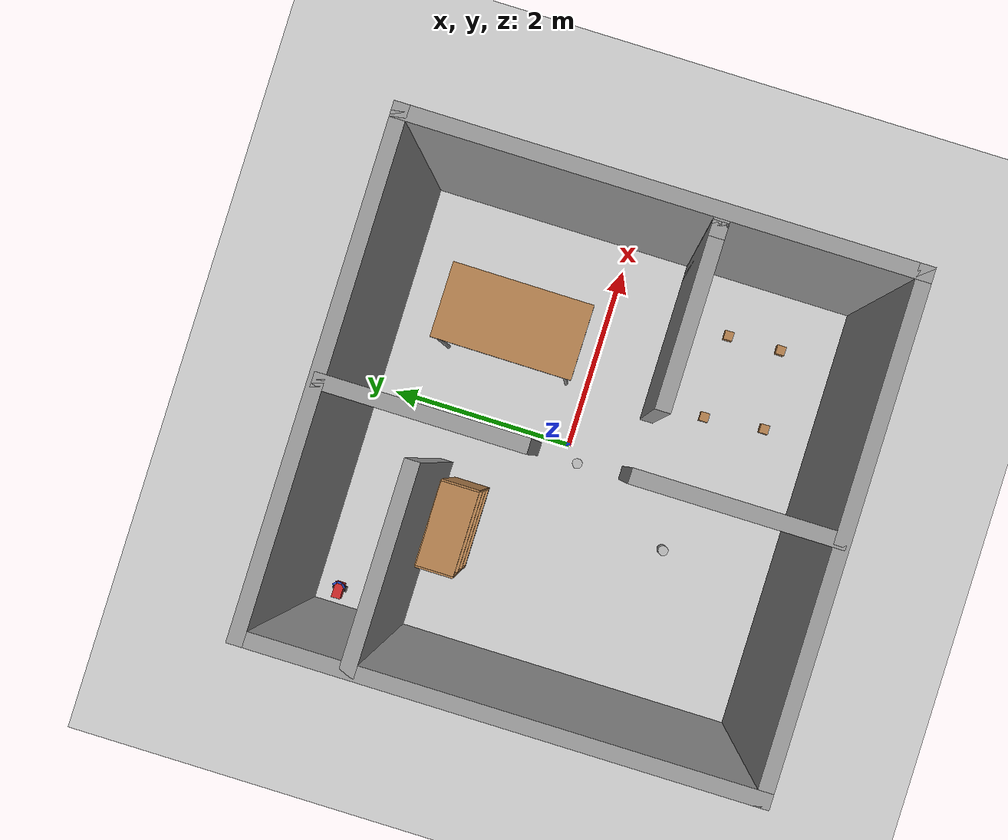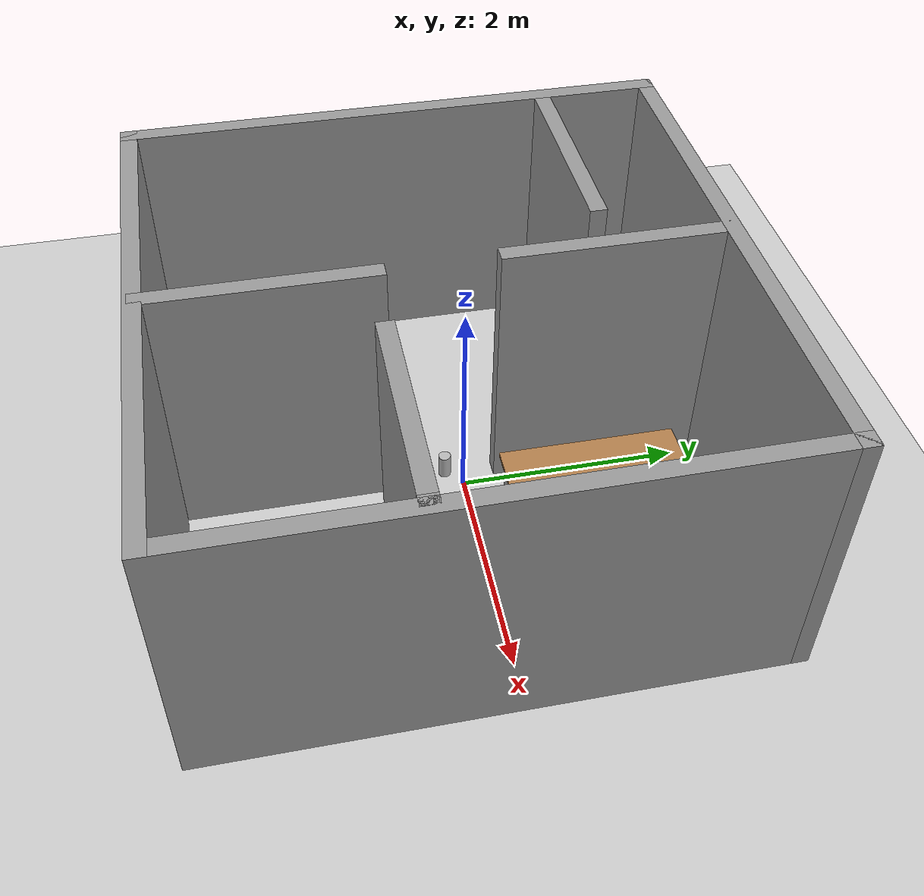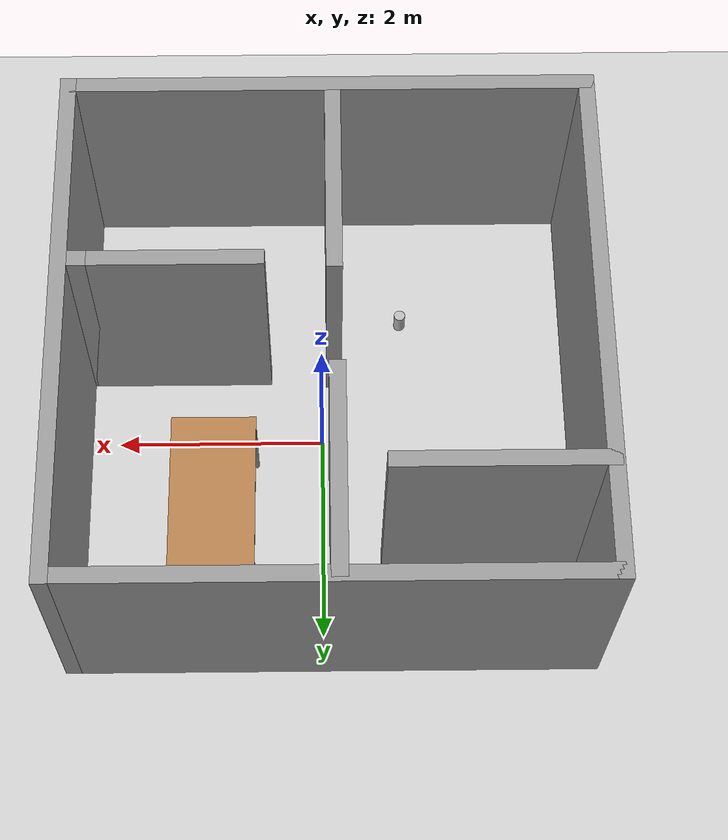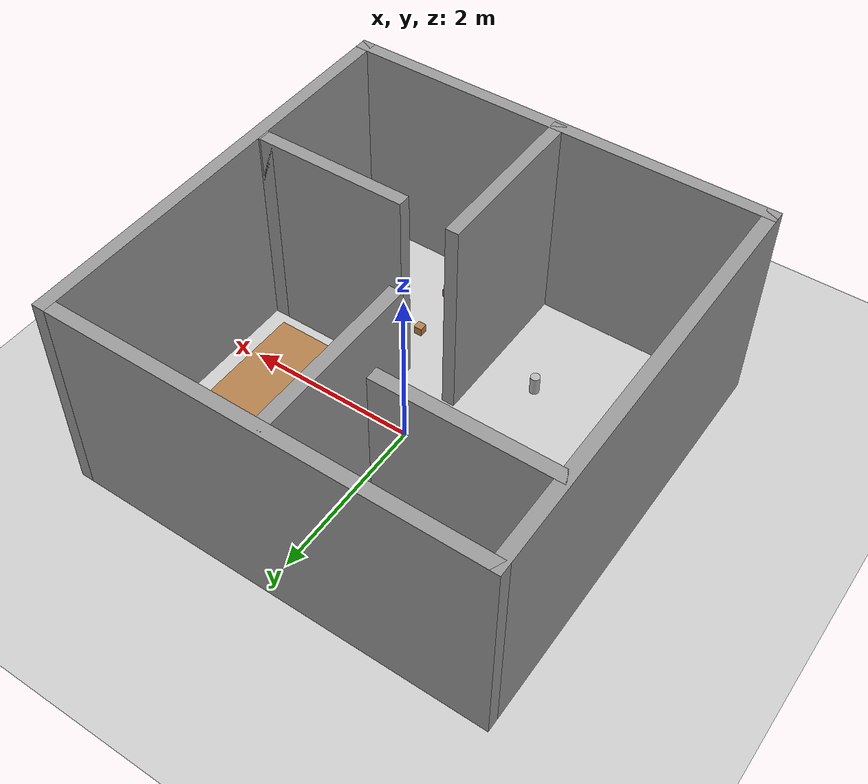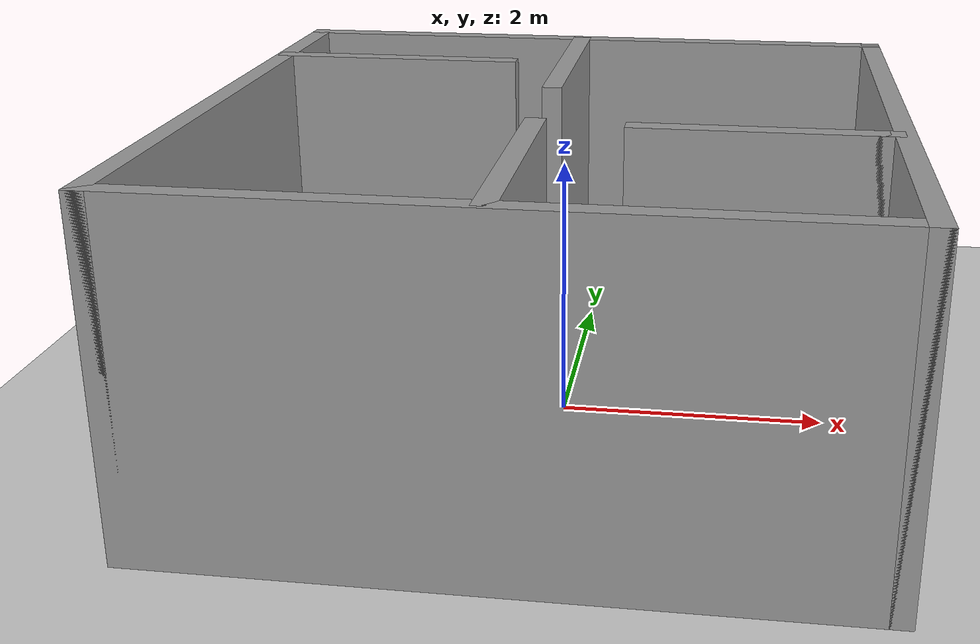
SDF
<sdf version="1.7">
 <world name="default">
  <model name="ground_plane">
   <static>1</static>
   <link name="link">
    <collision name="collision">
     <geometry><plane><normal>0 0 1</normal><size>100 100</size></plane></geometry>
     <surface>
      <contact><collide_bitmask>65535</collide_bitmask></contact>
      <friction><ode><mu>100</mu><mu2>50</mu2></ode></friction>
     </surface>
    </collision>
    <visual name="visual">
     <cast_shadows>0</cast_shadows>
     <geometry><plane><normal>0 0 1</normal><size>100 100</size></plane></geometry>
     <material>
      <script><uri>file://media/materials/scripts/gazebo.material</uri><name>Gazebo/Grey</name></script>
     </material>
    </visual>
   </link>
  </model>
  <light name="sun" type="directional">
   <pose>0 0 10 0 -0 0</pose>
   <diffuse>0.8 0.8 0.8 1</diffuse>
   <specular>0.2 0.2 0.2 1</specular>
   <attenuation>
    <range>1000</range>
    <constant>0.9</constant>
    <linear>0.01</linear>
    <quadratic>0.001</quadratic>
   </attenuation>
   <direction>-0.5 0.1 -0.9</direction>
  </light>
  <gravity>0 0 -9.8</gravity>
  <magnetic_field>6e-06 2.3e-05 -4.2e-05</magnetic_field>
  <atmosphere type="adiabatic"/>
  <physics name="default_physics" default="0" type="ode">
   <max_step_size>0.001</max_step_size>
   <real_time_factor>1</real_time_factor>
   <real_time_update_rate>1000</real_time_update_rate>
  </physics>
  <scene><ambient>0.4 0.4 0.4 1</ambient><background>0.7 0.7 0.7 1</background><shadows>1</shadows></scene>
  <audio><device>default</device></audio>
  <spherical_coordinates>
   <surface_model>EARTH_WGS84</surface_model>
   <latitude_deg>0</latitude_deg>
   <longitude_deg>0</longitude_deg>
   <elevation>0</elevation>
   <heading_deg>0</heading_deg>
  </spherical_coordinates>
  <model name="red_rider">
   <link name="base_link">
    <inertial>
     <pose>-0.007057 0 -0.005881 0 -0 0</pose>
     <mass>1.70003</mass>
     <inertia>
      <ixx>0.130544</ixx>
      <ixy>-7.47233e-25</ixy>
      <ixz>-0.000529575</ixz>
      <iyy>0.21118</iyy>
      <iyz>5.99475e-24</iyz>
      <izz>0.130739</izz>
     </inertia>
    </inertial>
    <collision name="base_link_collision"><geometry><box><size>0.175 0.1 0.1</size></box></geometry></collision>
    <collision name="base_link_fixed_joint_lump__caster_collision_1">
     <pose>-0.06 0 -0.05 0 -0 0</pose>
     <geometry><sphere><radius>0.025</radius></sphere></geometry>
    </collision>
    <collision name="base_link_fixed_joint_lump__sonar_C_solid_collision_2">
     <pose>0.0875 0 0.0625 0 -0 0</pose>
     <geometry><box><size>0.02 0.05 0.025</size></box></geometry>
    </collision>
    <collision name="base_link_fixed_joint_lump__sonar_L_solid_collision_3">
     <pose>0.065 0.0495 0.0625 0 -0 0.785398</pose>
     <geometry><box><size>0.02 0.05 0.025</size></box></geometry>
    </collision>
    <collision name="base_link_fixed_joint_lump__sonar_R_solid_collision_4">
     <pose>0.065 -0.0495 0.0625 0 0 -0.785398</pose>
     <geometry><box><size>0.02 0.05 0.025</size></box></geometry>
    </collision>
    <visual name="base_link_visual">
     <geometry><box><size>0.175 0.1 0.1</size></box></geometry>
     <material>
      <script><name>Gazebo/Red</name><uri>file://media/materials/scripts/gazebo.material</uri></script>
     </material>
    </visual>
    <visual name="base_link_fixed_joint_lump__caster_visual_1">
     <pose>-0.06 0 -0.05 0 -0 0</pose>
     <geometry><sphere><radius>0.025</radius></sphere></geometry>
     <material>
      <script><name>Gazebo/Black</name><uri>file://media/materials/scripts/gazebo.material</uri></script>
     </material>
    </visual>
    <visual name="base_link_fixed_joint_lump__sonar_C_solid_visual_2">
     <pose>0.0875 0 0.0625 0 -0 0</pose>
     <geometry><box><size>0.02 0.05 0.025</size></box></geometry>
     <material>
      <script><name>Gazebo/Blue</name><uri>file://media/materials/scripts/gazebo.material</uri></script>
     </material>
    </visual>
    <visual name="base_link_fixed_joint_lump__sonar_L_solid_visual_3">
     <pose>0.065 0.0495 0.0625 0 -0 0.785398</pose>
     <geometry><box><size>0.02 0.05 0.025</size></box></geometry>
     <material>
      <script><name>Gazebo/Blue</name><uri>file://media/materials/scripts/gazebo.material</uri></script>
     </material>
    </visual>
    <visual name="base_link_fixed_joint_lump__sonar_R_solid_visual_4">
     <pose>0.065 -0.0495 0.0625 0 0 -0.785398</pose>
     <geometry><box><size>0.02 0.05 0.025</size></box></geometry>
     <material>
      <script><name>Gazebo/Blue</name><uri>file://media/materials/scripts/gazebo.material</uri></script>
     </material>
    </visual>
    <sensor name="center_sonar" type="ray">
     <always_on>1</always_on>
     <visualize>1</visualize>
     <update_rate>30</update_rate>
     <ray>
      <scan>
       <horizontal>
        <samples>50</samples>
        <resolution>1</resolution>
        <min_angle>-0.349066</min_angle>
        <max_angle>0.349066</max_angle>
       </horizontal>
       <vertical>
        <samples>50</samples>
        <resolution>1</resolution>
        <min_angle>-0.0872665</min_angle>
        <max_angle>0.0872665</max_angle>
       </vertical>
      </scan>
      <range><min>0.001</min><max>2</max><resolution>0.0005</resolution></range>
     </ray>
     <plugin name="gazebo_sonar_c" filename="libgazebo_ros_range.so">
      <gaussianNoise>0.005</gaussianNoise>
      <alwaysOn>1</alwaysOn>
      <updateRate>30</updateRate>
      <topicName>red_rider/sensors/sonar</topicName>
      <frameName>sonar_C</frameName>
      <radiation>ultrasound</radiation>
      <fov>0.175</fov>
      <robotNamespace>/</robotNamespace>
     </plugin>
     <pose>0.0975 0 0.0625 0 -0 0</pose>
    </sensor>
    <sensor name="left_sonar" type="ray">
     <always_on>1</always_on>
     <visualize>1</visualize>
     <update_rate>30</update_rate>
     <ray>
      <scan>
       <horizontal>
        <samples>50</samples>
        <resolution>1</resolution>
        <min_angle>-0.349066</min_angle>
        <max_angle>0.349066</max_angle>
       </horizontal>
       <vertical>
        <samples>50</samples>
        <resolution>1</resolution>
        <min_angle>-0.0872665</min_angle>
        <max_angle>0.0872665</max_angle>
       </vertical>
      </scan>
      <range><min>0.001</min><max>2</max><resolution>0.0005</resolution></range>
     </ray>
     <plugin name="gazebo_sonar_l" filename="libgazebo_ros_range.so">
      <gaussianNoise>0.005</gaussianNoise>
      <alwaysOn>1</alwaysOn>
      <updateRate>30</updateRate>
      <topicName>red_rider/sensors/sonar</topicName>
      <frameName>sonar_L</frameName>
      <radiation>ultrasound</radiation>
      <fov>0.175</fov>
      <robotNamespace>/</robotNamespace>
     </plugin>
     <pose>0.072071 0.056571 0.0625 0 -0 0.785398</pose>
    </sensor>
    <sensor name="right_sonar" type="ray">
     <always_on>1</always_on>
     <visualize>1</visualize>
     <update_rate>30</update_rate>
     <ray>
      <scan>
       <horizontal>
        <samples>50</samples>
        <resolution>1</resolution>
        <min_angle>-0.349066</min_angle>
        <max_angle>0.349066</max_angle>
       </horizontal>
       <vertical>
        <samples>50</samples>
        <resolution>1</resolution>
        <min_angle>-0.0872665</min_angle>
        <max_angle>0.0872665</max_angle>
       </vertical>
      </scan>
      <range><min>0.001</min><max>2</max><resolution>0.0005</resolution></range>
     </ray>
     <plugin name="gazebo_sonar_r" filename="libgazebo_ros_range.so">
      <gaussianNoise>0.005</gaussianNoise>
      <alwaysOn>1</alwaysOn>
      <updateRate>30</updateRate>
      <topicName>red_rider/sensors/sonar</topicName>
      <frameName>sonar_R</frameName>
      <radiation>ultrasound</radiation>
      <fov>0.175</fov>
      <robotNamespace>/</robotNamespace>
     </plugin>
     <pose>0.072071 -0.056571 0.0625 0 0 -0.785398</pose>
    </sensor>
   </link>
   <link name="left_wheel">
    <pose>0.025 0.0625 -0.0425 0 -0 0</pose>
    <inertial>
     <pose>0 0 0 1.57079 -0 0</pose>
     <mass>0.15</mass>
     <inertia><ixx>0.01</ixx><ixy>0</ixy><ixz>0</ixz><iyy>0.005</iyy><iyz>0</iyz><izz>0.005</izz></inertia>
    </inertial>
    <collision name="left_wheel_collision">
     <pose>0 0 0 1.57079 -0 0</pose>
     <geometry><cylinder><length>0.025</length><radius>0.0325</radius></cylinder></geometry>
    </collision>
    <visual name="left_wheel_visual">
     <pose>0 0 0 1.57079 -0 0</pose>
     <geometry><cylinder><length>0.025</length><radius>0.0325</radius></cylinder></geometry>
     <material>
      <script><name>Gazebo/Black</name><uri>file://media/materials/scripts/gazebo.material</uri></script>
     </material>
    </visual>
   </link>
   <joint name="joint_left_wheel" type="revolute">
    <child>left_wheel</child>
    <parent>base_link</parent>
    <axis>
     <xyz>0 1 0</xyz>
     <limit><lower>-1e+16</lower><upper>1e+16</upper></limit>
     <dynamics><spring_reference>0</spring_reference><spring_stiffness>0</spring_stiffness></dynamics>
     <use_parent_model_frame>1</use_parent_model_frame>
    </axis>
   </joint>
   <link name="right_wheel">
    <pose>0.025 -0.0625 -0.0425 0 -0 0</pose>
    <inertial>
     <pose>0 0 0 1.57079 -0 0</pose>
     <mass>0.15</mass>
     <inertia><ixx>0.01</ixx><ixy>0</ixy><ixz>0</ixz><iyy>0.005</iyy><iyz>0</iyz><izz>0.005</izz></inertia>
    </inertial>
    <collision name="right_wheel_collision">
     <pose>0 0 0 1.57079 -0 0</pose>
     <geometry><cylinder><length>0.025</length><radius>0.0325</radius></cylinder></geometry>
    </collision>
    <visual name="right_wheel_visual">
     <pose>0 0 0 1.57079 -0 0</pose>
     <geometry><cylinder><length>0.025</length><radius>0.0325</radius></cylinder></geometry>
     <material>
      <script><name>Gazebo/Black</name><uri>file://media/materials/scripts/gazebo.material</uri></script>
     </material>
    </visual>
   </link>
   <joint name="joint_right_wheel" type="revolute">
    <child>right_wheel</child>
    <parent>base_link</parent>
    <axis>
     <xyz>0 1 0</xyz>
     <limit><lower>-1e+16</lower><upper>1e+16</upper></limit>
     <dynamics><spring_reference>0</spring_reference><spring_stiffness>0</spring_stiffness></dynamics>
     <use_parent_model_frame>1</use_parent_model_frame>
    </axis>
   </joint>
   <static>0</static>
   <plugin name="differential_drive_controller" filename="libgazebo_ros_diff_drive.so">
    <alwaysOn>1</alwaysOn>
    <updateRate>30</updateRate>
    <leftJoint>joint_left_wheel</leftJoint>
    <rightJoint>joint_right_wheel</rightJoint>
    <wheelSeparation>0.125</wheelSeparation>
    <wheelDiameter>0.065</wheelDiameter>
    <commandTopic>red_rider/cmd_vel</commandTopic>
    <odometryTopic>red_rider/odom</odometryTopic>
    <odometryFrame>odom</odometryFrame>
    <robotBaseFrame>base_link</robotBaseFrame>
    <legacyMode>0</legacyMode>
    <publishWheelTF>0</publishWheelTF>
    <publishOdomTF>1</publishOdomTF>
    <publishWheelJointState>0</publishWheelJointState>
    <wheelAcceleration>0</wheelAcceleration>
    <wheelTorque>2</wheelTorque>
    <robotNamespace>/</robotNamespace>
   </plugin>
   <pose>-2.26279 1.94846 0.074998 9e-06 3e-05 -0.011892</pose>
  </model>
  <model name="TestArea">
   <pose>-0.073314 -0.1604 0 0 -0 0</pose>
   <link name="Wall_10">
    <collision name="Wall_10_Collision">
     <geometry><box><size>5 0.15 2.5</size></box></geometry>
     <pose>0 0 1.25 0 -0 0</pose>
    </collision>
    <visual name="Wall_10_Visual">
     <pose>0 0 1.25 0 -0 0</pose>
     <geometry><box><size>5 0.15 2.5</size></box></geometry>
     <material>
      <script><uri>file://media/materials/scripts/gazebo.material</uri><name>Gazebo/Grey</name></script>
      <ambient>1 1 1 1</ambient>
     </material>
     <meta><layer>0</layer></meta>
    </visual>
    <pose>0 2.425 0 0 -0 3.14159</pose>
   </link>
   <link name="Wall_11">
    <collision name="Wall_11_Collision">
     <geometry><box><size>5 0.15 2.5</size></box></geometry>
     <pose>0 0 1.25 0 -0 0</pose>
    </collision>
    <visual name="Wall_11_Visual">
     <pose>0 0 1.25 0 -0 0</pose>
     <geometry><box><size>5 0.15 2.5</size></box></geometry>
     <material>
      <script><uri>file://media/materials/scripts/gazebo.material</uri><name>Gazebo/Grey</name></script>
      <ambient>1 1 1 1</ambient>
     </material>
     <meta><layer>0</layer></meta>
    </visual>
    <pose>-2.425 0 0 0 -0 -1.5708</pose>
   </link>
   <link name="Wall_13">
    <collision name="Wall_13_Collision">
     <geometry><box><size>2 0.15 2.5</size></box></geometry>
     <pose>0 0 1.25 0 -0 0</pose>
    </collision>
    <visual name="Wall_13_Visual">
     <pose>0 0 1.25 0 -0 0</pose>
     <geometry><box><size>2 0.15 2.5</size></box></geometry>
     <material>
      <script><uri>file://media/materials/scripts/gazebo.material</uri><name>Gazebo/Grey</name></script>
      <ambient>1 1 1 1</ambient>
     </material>
     <meta><layer>0</layer></meta>
    </visual>
    <pose>-0.046351 -1.46502 0 0 -0 1.5708</pose>
   </link>
   <link name="Wall_15">
    <collision name="Wall_15_Collision">
     <geometry><box><size>2 0.15 2.5</size></box></geometry>
     <pose>0 0 1.25 0 -0 0</pose>
    </collision>
    <visual name="Wall_15_Visual">
     <pose>0 0 1.25 0 -0 0</pose>
     <geometry><box><size>2 0.15 2.5</size></box></geometry>
     <material>
      <script><uri>file://media/materials/scripts/gazebo.material</uri><name>Gazebo/Grey</name></script>
      <ambient>1 1 1 1</ambient>
     </material>
     <meta><layer>0</layer></meta>
    </visual>
    <pose>-0.063841 1.45977 0 0 -0 -1.5708</pose>
   </link>
   <link name="Wall_17">
    <collision name="Wall_17_Collision">
     <geometry><box><size>2 0.15 2.5</size></box></geometry>
     <pose>0 0 1.25 0 -0 0</pose>
    </collision>
    <visual name="Wall_17_Visual">
     <pose>0 0 1.25 0 -0 0</pose>
     <geometry><box><size>2 0.15 2.5</size></box></geometry>
     <material>
      <script><uri>file://media/materials/scripts/gazebo.material</uri><name>Gazebo/Grey</name></script>
      <ambient>1 1 1 1</ambient>
     </material>
     <meta><layer>0</layer></meta>
    </visual>
    <pose>-1.48251 1.40532 0 0 -0 0</pose>
   </link>
   <link name="Wall_19">
    <collision name="Wall_19_Collision">
     <geometry><box><size>1.75 0.15 2.5</size></box></geometry>
     <pose>0 0 1.25 0 -0 0</pose>
    </collision>
    <visual name="Wall_19_Visual">
     <pose>0 0 1.25 0 -0 0</pose>
     <geometry><box><size>1.75 0.15 2.5</size></box></geometry>
     <material>
      <script><uri>file://media/materials/scripts/gazebo.material</uri><name>Gazebo/Grey</name></script>
      <ambient>1 1 1 1</ambient>
     </material>
     <meta><layer>0</layer></meta>
    </visual>
    <pose>1.45325 -0.571053 0 0 -0 0</pose>
   </link>
   <link name="Wall_20">
    <collision name="Wall_20_Collision">
     <geometry><box><size>0.25 0.15 2.5</size></box></geometry>
     <pose>0 0 1.25 0 -0 0</pose>
    </collision>
    <visual name="Wall_20_Visual">
     <pose>0 0 1.25 0 -0 0</pose>
     <geometry><box><size>0.25 0.15 2.5</size></box></geometry>
     <material>
      <script><uri>file://media/materials/scripts/gazebo.material</uri><name>Gazebo/Grey</name></script>
      <ambient>1 1 1 1</ambient>
     </material>
     <meta><layer>0</layer></meta>
    </visual>
    <pose>2.30325 -0.571053 0 0 -0 0</pose>
   </link>
   <link name="Wall_8">
    <collision name="Wall_8_Collision">
     <geometry><box><size>5 0.15 2.5</size></box></geometry>
     <pose>0 0 1.25 0 -0 0</pose>
    </collision>
    <visual name="Wall_8_Visual">
     <pose>0 0 1.25 0 -0 0</pose>
     <geometry><box><size>5 0.15 2.5</size></box></geometry>
     <material>
      <script><uri>file://media/materials/scripts/gazebo.material</uri><name>Gazebo/Grey</name></script>
      <ambient>1 1 1 1</ambient>
     </material>
     <meta><layer>0</layer></meta>
    </visual>
    <pose>0 -2.425 0 0 -0 0</pose>
   </link>
   <link name="Wall_9">
    <collision name="Wall_9_Collision">
     <geometry><box><size>5 0.15 2.5</size></box></geometry>
     <pose>0 0 1.25 0 -0 0</pose>
    </collision>
    <visual name="Wall_9_Visual">
     <pose>0 0 1.25 0 -0 0</pose>
     <geometry><box><size>5 0.15 2.5</size></box></geometry>
     <material>
      <script><uri>file://media/materials/scripts/gazebo.material</uri><name>Gazebo/Grey</name></script>
      <ambient>1 1 1 1</ambient>
     </material>
     <meta><layer>0</layer></meta>
    </visual>
    <pose>2.425 0 0 0 -0 1.5708</pose>
   </link>
   <static>1</static>
  </model>
  <model name="bookshelf">
   <static>1</static>
   <link name="link">
    <inertial><mass>1</mass></inertial>
    <collision name="back">
     <pose>0 0.005 0.6 0 -0 0</pose>
     <geometry><box><size>0.9 0.01 1.2</size></box></geometry>
    </collision>
    <visual name="visual1">
     <pose>0 0.005 0.6 0 -0 0</pose>
     <geometry><box><size>0.9 0.01 1.2</size></box></geometry>
     <material>
      <script><uri>file://media/materials/scripts/gazebo.material</uri><name>Gazebo/Wood</name></script>
     </material>
    </visual>
    <collision name="left_side">
     <pose>0.45 -0.195 0.6 0 -0 0</pose>
     <geometry><box><size>0.02 0.4 1.2</size></box></geometry>
    </collision>
    <visual name="visual2">
     <pose>0.45 -0.195 0.6 0 -0 0</pose>
     <geometry><box><size>0.02 0.4 1.2</size></box></geometry>
     <material>
      <script><uri>file://media/materials/scripts/gazebo.material</uri><name>Gazebo/Wood</name></script>
     </material>
    </visual>
    <collision name="right_side">
     <pose>-0.45 -0.195 0.6 0 -0 0</pose>
     <geometry><box><size>0.02 0.4 1.2</size></box></geometry>
    </collision>
    <visual name="visual3">
     <pose>-0.45 -0.195 0.6 0 -0 0</pose>
     <geometry><box><size>0.02 0.4 1.2</size></box></geometry>
     <material>
      <script><uri>file://media/materials/scripts/gazebo.material</uri><name>Gazebo/Wood</name></script>
     </material>
    </visual>
    <collision name="bottom">
     <pose>0 -0.195 0.03 0 -0 0</pose>
     <geometry><box><size>0.88 0.4 0.06</size></box></geometry>
    </collision>
    <visual name="visual4">
     <pose>0 -0.195 0.03 0 -0 0</pose>
     <geometry><box><size>0.88 0.4 0.06</size></box></geometry>
     <material>
      <script><uri>file://media/materials/scripts/gazebo.material</uri><name>Gazebo/Wood</name></script>
     </material>
    </visual>
    <collision name="top">
     <pose>0 -0.195 1.19 0 -0 0</pose>
     <geometry><box><size>0.88 0.4 0.02</size></box></geometry>
    </collision>
    <visual name="visual5">
     <pose>0 -0.195 1.19 0 -0 0</pose>
     <geometry><box><size>0.88 0.4 0.02</size></box></geometry>
     <material>
      <script><uri>file://media/materials/scripts/gazebo.material</uri><name>Gazebo/Wood</name></script>
     </material>
    </visual>
    <collision name="low_shelf">
     <pose>0 -0.195 0.43 0 -0 0</pose>
     <geometry><box><size>0.88 0.4 0.02</size></box></geometry>
    </collision>
    <visual name="visual6">
     <pose>0 -0.195 0.43 0 -0 0</pose>
     <geometry><box><size>0.88 0.4 0.02</size></box></geometry>
     <material>
      <script><uri>file://media/materials/scripts/gazebo.material</uri><name>Gazebo/Wood</name></script>
     </material>
    </visual>
    <collision name="high_shelf">
     <pose>0 -0.195 0.8 0 -0 0</pose>
     <geometry><box><size>0.88 0.4 0.02</size></box></geometry>
    </collision>
    <visual name="visual7">
     <pose>0 -0.195 0.8 0 -0 0</pose>
     <geometry><box><size>0.88 0.4 0.02</size></box></geometry>
     <material>
      <script><uri>file://media/materials/scripts/gazebo.material</uri><name>Gazebo/Wood</name></script>
     </material>
    </visual>
   </link>
   <pose>-1.16487 1.09634 0 0 -0 0</pose>
  </model>
  <model name="beer">
   <link name="link">
    <pose>0 0 0.115 0 -0 0</pose>
    <inertial>
     <mass>0.39</mass>
     <inertia><ixx>0.00058</ixx><ixy>0</ixy><ixz>0</ixz><iyy>0.00058</iyy><iyz>0</iyz><izz>0.00019</izz></inertia>
    </inertial>
    <collision name="collision">
     <geometry><cylinder><radius>0.055</radius><length>0.23</length></cylinder></geometry>
    </collision>
    <visual name="visual">
     <geometry><cylinder><radius>0.055</radius><length>0.23</length></cylinder></geometry>
     <material>
      <script>
       <uri>model://beer/materials/scripts</uri>
       <uri>model://beer/materials/textures</uri>
       <name>Beer/Diffuse</name>
      </script>
     </material>
    </visual>
   </link>
   <pose>-0.79276 -1.3115 -7e-06 -1e-06 -0 -8e-06</pose>
  </model>
  <model name="beer_0">
   <link name="link">
    <pose>0 0 0.115 0 -0 0</pose>
    <inertial>
     <mass>0.39</mass>
     <inertia><ixx>0.00058</ixx><ixy>0</ixy><ixz>0</ixz><iyy>0.00058</iyy><iyz>0</iyz><izz>0.00019</izz></inertia>
    </inertial>
    <collision name="collision">
     <geometry><cylinder><radius>0.055</radius><length>0.23</length></cylinder></geometry>
    </collision>
    <visual name="visual">
     <geometry><cylinder><radius>0.055</radius><length>0.23</length></cylinder></geometry>
     <material>
      <script>
       <uri>model://beer/materials/scripts</uri>
       <uri>model://beer/materials/textures</uri>
       <name>Beer/Diffuse</name>
      </script>
     </material>
    </visual>
   </link>
   <pose>-0.164441 -0.142126 -7e-06 -1e-06 -0 -8e-06</pose>
  </model>
  <model name="beer_1">
   <link name="link">
    <pose>0 0 0.115 0 -0 0</pose>
    <inertial>
     <mass>0.39</mass>
     <inertia><ixx>0.00058</ixx><ixy>0</ixy><ixz>0</ixz><iyy>0.00058</iyy><iyz>0</iyz><izz>0.00019</izz></inertia>
    </inertial>
    <collision name="collision">
     <geometry><cylinder><radius>0.055</radius><length>0.23</length></cylinder></geometry>
    </collision>
    <visual name="visual">
     <geometry><cylinder><radius>0.055</radius><length>0.23</length></cylinder></geometry>
     <material>
      <script>
       <uri>model://beer/materials/scripts</uri>
       <uri>model://beer/materials/textures</uri>
       <name>Beer/Diffuse</name>
      </script>
     </material>
    </visual>
   </link>
   <pose>0.763127 1.0332 -7e-06 -1e-06 -0 -8e-06</pose>
  </model>
  <model name="table">
   <static>1</static>
   <link name="link">
    <collision name="surface">
     <pose>0 0 1 0 -0 0</pose>
     <geometry><box><size>1.5 0.8 0.03</size></box></geometry>
     <surface><friction><ode><mu>0.6</mu><mu2>0.6</mu2></ode></friction></surface>
    </collision>
    <visual name="visual1">
     <pose>0 0 1 0 -0 0</pose>
     <geometry><box><size>1.5 0.8 0.03</size></box></geometry>
     <material>
      <script><uri>file://media/materials/scripts/gazebo.material</uri><name>Gazebo/Wood</name></script>
     </material>
    </visual>
    <collision name="front_left_leg">
     <pose>0.68 0.38 0.5 0 -0 0</pose>
     <geometry><cylinder><radius>0.02</radius><length>1</length></cylinder></geometry>
    </collision>
    <visual name="front_left_leg">
     <pose>0.68 0.38 0.5 0 -0 0</pose>
     <geometry><cylinder><radius>0.02</radius><length>1</length></cylinder></geometry>
     <material>
      <script><uri>file://media/materials/scripts/gazebo.material</uri><name>Gazebo/Grey</name></script>
     </material>
    </visual>
    <collision name="front_right_leg">
     <pose>0.68 -0.38 0.5 0 -0 0</pose>
     <geometry><cylinder><radius>0.02</radius><length>1</length></cylinder></geometry>
    </collision>
    <visual name="front_right_leg">
     <pose>0.68 -0.38 0.5 0 -0 0</pose>
     <geometry><cylinder><radius>0.02</radius><length>1</length></cylinder></geometry>
     <material>
      <script><uri>file://media/materials/scripts/gazebo.material</uri><name>Gazebo/Grey</name></script>
     </material>
    </visual>
    <collision name="back_right_leg">
     <pose>-0.68 -0.38 0.5 0 -0 0</pose>
     <geometry><cylinder><radius>0.02</radius><length>1</length></cylinder></geometry>
    </collision>
    <visual name="back_right_leg">
     <pose>-0.68 -0.38 0.5 0 -0 0</pose>
     <geometry><cylinder><radius>0.02</radius><length>1</length></cylinder></geometry>
     <material>
      <script><uri>file://media/materials/scripts/gazebo.material</uri><name>Gazebo/Grey</name></script>
     </material>
    </visual>
    <collision name="back_left_leg">
     <pose>-0.68 0.38 0.5 0 -0 0</pose>
     <geometry><cylinder><radius>0.02</radius><length>1</length></cylinder></geometry>
    </collision>
    <visual name="back_left_leg">
     <pose>-0.68 0.38 0.5 0 -0 0</pose>
     <geometry><cylinder><radius>0.02</radius><length>1</length></cylinder></geometry>
     <material>
      <script><uri>file://media/materials/scripts/gazebo.material</uri><name>Gazebo/Grey</name></script>
     </material>
    </visual>
   </link>
   <pose>1.02548 0.913685 0 0 -0 1.56711</pose>
  </model>
  <model name="wood_cube_10cm">
   <link name="link">
    <pose>0 0 0.05 0 -0 0</pose>
    <inertial>
     <mass>0.5167</mass>
     <inertia>
      <ixx>0.000861167</ixx>
      <ixy>0</ixy>
      <ixz>0</ixz>
      <iyy>0.000861167</iyy>
      <iyz>0</iyz>
      <izz>0.000861167</izz>
     </inertia>
    </inertial>
    <collision name="collision">
     <geometry><box><size>0.1 0.1 0.1</size></box></geometry>
     <surface>
      <contact>
       <poissons_ratio>0.347</poissons_ratio>
       <elastic_modulus>8.8e+09</elastic_modulus>
       <ode><kp>100000</kp><kd>100</kd><max_vel>100</max_vel><min_depth>0.001</min_depth></ode>
      </contact>
      <friction>
       <torsional>
        <coefficient>1</coefficient>
        <use_patch_radius>0</use_patch_radius>
        <surface_radius>0.01</surface_radius>
       </torsional>
      </friction>
     </surface>
    </collision>
    <visual name="visual">
     <geometry><box><size>0.1 0.1 0.1</size></box></geometry>
     <material>
      <script><uri>file://media/materials/scripts/gazebo.material</uri><name>Gazebo/Wood</name></script>
     </material>
    </visual>
   </link>
   <pose>0.735399 -1.32403 -0.001013 0 -0 0</pose>
  </model>
  <model name="wood_cube_10cm_0">
   <link name="link">
    <pose>0 0 0.05 0 -0 0</pose>
    <inertial>
     <mass>0.5167</mass>
     <inertia>
      <ixx>0.000861167</ixx>
      <ixy>0</ixy>
      <ixz>0</ixz>
      <iyy>0.000861167</iyy>
      <iyz>0</iyz>
      <izz>0.000861167</izz>
     </inertia>
    </inertial>
    <collision name="collision">
     <geometry><box><size>0.1 0.1 0.1</size></box></geometry>
     <surface>
      <contact>
       <poissons_ratio>0.347</poissons_ratio>
       <elastic_modulus>8.8e+09</elastic_modulus>
       <ode><kp>100000</kp><kd>100</kd><max_vel>100</max_vel><min_depth>0.001</min_depth></ode>
      </contact>
      <friction>
       <torsional>
        <coefficient>1</coefficient>
        <use_patch_radius>0</use_patch_radius>
        <surface_radius>0.01</surface_radius>
       </torsional>
      </friction>
     </surface>
    </collision>
    <visual name="visual">
     <geometry><box><size>0.1 0.1 0.1</size></box></geometry>
     <material>
      <script><uri>file://media/materials/scripts/gazebo.material</uri><name>Gazebo/Wood</name></script>
     </material>
    </visual>
   </link>
   <pose>0.802193 -1.9922 -0.001013 0 -0 0</pose>
  </model>
  <model name="wood_cube_10cm_1">
   <link name="link">
    <pose>0 0 0.05 0 -0 0</pose>
    <inertial>
     <mass>0.5167</mass>
     <inertia>
      <ixx>0.000861167</ixx>
      <ixy>0</ixy>
      <ixz>0</ixz>
      <iyy>0.000861167</iyy>
      <iyz>0</iyz>
      <izz>0.000861167</izz>
     </inertia>
    </inertial>
    <collision name="collision">
     <geometry><box><size>0.1 0.1 0.1</size></box></geometry>
     <surface>
      <contact>
       <poissons_ratio>0.347</poissons_ratio>
       <elastic_modulus>8.8e+09</elastic_modulus>
       <ode><kp>100000</kp><kd>100</kd><max_vel>100</max_vel><min_depth>0.001</min_depth></ode>
      </contact>
      <friction>
       <torsional>
        <coefficient>1</coefficient>
        <use_patch_radius>0</use_patch_radius>
        <surface_radius>0.01</surface_radius>
       </torsional>
      </friction>
     </surface>
    </collision>
    <visual name="visual">
     <geometry><box><size>0.1 0.1 0.1</size></box></geometry>
     <material>
      <script><uri>file://media/materials/scripts/gazebo.material</uri><name>Gazebo/Wood</name></script>
     </material>
    </visual>
   </link>
   <pose>1.66603 -1.317 -0.001013 0 -0 0</pose>
  </model>
  <model name="wood_cube_10cm_2">
   <link name="link">
    <pose>0 0 0.05 0 -0 0</pose>
    <inertial>
     <mass>0.5167</mass>
     <inertia>
      <ixx>0.000861167</ixx>
      <ixy>0</ixy>
      <ixz>0</ixz>
      <iyy>0.000861167</iyy>
      <iyz>0</iyz>
      <izz>0.000861167</izz>
     </inertia>
    </inertial>
    <collision name="collision">
     <geometry><box><size>0.1 0.1 0.1</size></box></geometry>
     <surface>
      <contact>
       <poissons_ratio>0.347</poissons_ratio>
       <elastic_modulus>8.8e+09</elastic_modulus>
       <ode><kp>100000</kp><kd>100</kd><max_vel>100</max_vel><min_depth>0.001</min_depth></ode>
      </contact>
      <friction>
       <torsional>
        <coefficient>1</coefficient>
        <use_patch_radius>0</use_patch_radius>
        <surface_radius>0.01</surface_radius>
       </torsional>
      </friction>
     </surface>
    </collision>
    <visual name="visual">
     <geometry><box><size>0.1 0.1 0.1</size></box></geometry>
     <material>
      <script><uri>file://media/materials/scripts/gazebo.material</uri><name>Gazebo/Wood</name></script>
     </material>
    </visual>
   </link>
   <pose>1.68183 -1.91038 -0.001013 0 -0 0</pose>
  </model>
 </world>
</sdf>
